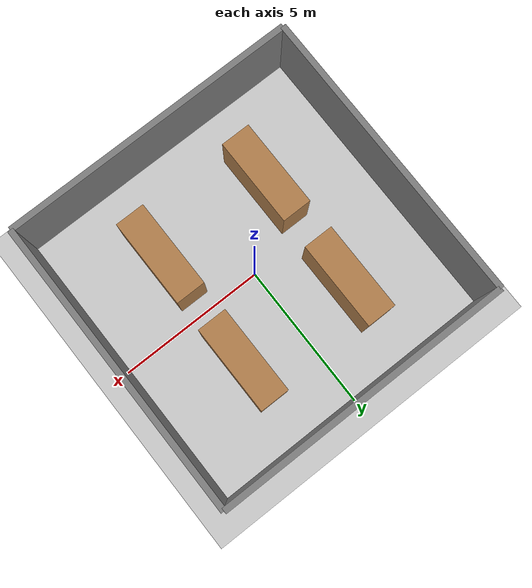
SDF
<?xml version="1.0" ?>
<sdf version="1.4">
  <world name="warehouse">
    <include>
      <uri>model://ground_plane</uri>
    </include>

    <include>
      <uri>model://sun</uri>
    </include>

    <!-- Warehouse walls -->
    <model name="warehouse_walls">
      <static>true</static>
      <link name="wall_1">
        <pose>0 5 1.5 0 0 0</pose>
        <collision name="collision">
          <geometry>
            <box>
              <size>10 0.2 3</size>
            </box>
          </geometry>
        </collision>
        <visual name="visual">
          <geometry>
            <box>
              <size>10 0.2 3</size>
            </box>
          </geometry>
          <material>
            <ambient>0.5 0.5 0.5 1</ambient>
            <diffuse>0.5 0.5 0.5 1</diffuse>
          </material>
        </visual>
      </link>

      <link name="wall_2">
        <pose>0 -5 1.5 0 0 0</pose>
        <collision name="collision">
          <geometry>
            <box>
              <size>10 0.2 3</size>
            </box>
          </geometry>
        </collision>
        <visual name="visual">
          <geometry>
            <box>
              <size>10 0.2 3</size>
            </box>
          </geometry>
          <material>
            <ambient>0.5 0.5 0.5 1</ambient>
            <diffuse>0.5 0.5 0.5 1</diffuse>
          </material>
        </visual>
      </link>

      <link name="wall_3">
        <pose>5 0 1.5 0 0 1.5708</pose>
        <collision name="collision">
          <geometry>
            <box>
              <size>10 0.2 3</size>
            </box>
          </geometry>
        </collision>
        <visual name="visual">
          <geometry>
            <box>
              <size>10 0.2 3</size>
            </box>
          </geometry>
          <material>
            <ambient>0.5 0.5 0.5 1</ambient>
            <diffuse>0.5 0.5 0.5 1</diffuse>
          </material>
        </visual>
      </link>

      <link name="wall_4">
        <pose>-5 0 1.5 0 0 1.5708</pose>
        <collision name="collision">
          <geometry>
            <box>
              <size>10 0.2 3</size>
            </box>
          </geometry>
        </collision>
        <visual name="visual">
          <geometry>
            <box>
              <size>10 0.2 3</size>
            </box>
          </geometry>
          <material>
            <ambient>0.5 0.5 0.5 1</ambient>
            <diffuse>0.5 0.5 0.5 1</diffuse>
          </material>
        </visual>
      </link>
    </model>

    <!-- Storage racks -->
    <model name="storage_racks">
      <static>true</static>
      <link name="rack_1">
        <pose>2 2 1 0 0 0</pose>
        <collision name="collision">
          <geometry>
            <box>
              <size>1 3 2</size>
            </box>
          </geometry>
        </collision>
        <visual name="visual">
          <geometry>
            <box>
              <size>1 3 2</size>
            </box>
          </geometry>
          <material>
            <ambient>0.7 0.5 0.3 1</ambient>
            <diffuse>0.7 0.5 0.3 1</diffuse>
          </material>
        </visual>
      </link>

      <link name="rack_2">
        <pose>-2 2 1 0 0 0</pose>
        <collision name="collision">
          <geometry>
            <box>
              <size>1 3 2</size>
            </box>
          </geometry>
        </collision>
        <visual name="visual">
          <geometry>
            <box>
              <size>1 3 2</size>
            </box>
          </geometry>
          <material>
            <ambient>0.7 0.5 0.3 1</ambient>
            <diffuse>0.7 0.5 0.3 1</diffuse>
          </material>
        </visual>
      </link>

      <link name="rack_3">
        <pose>2 -2 1 0 0 0</pose>
        <collision name="collision">
          <geometry>
            <box>
              <size>1 3 2</size>
            </box>
          </geometry>
        </collision>
        <visual name="visual">
          <geometry>
            <box>
              <size>1 3 2</size>
            </box>
          </geometry>
          <material>
            <ambient>0.7 0.5 0.3 1</ambient>
            <diffuse>0.7 0.5 0.3 1</diffuse>
          </material>
        </visual>
      </link>

      <link name="rack_4">
        <pose>-2 -2 1 0 0 0</pose>
        <collision name="collision">
          <geometry>
            <box>
              <size>1 3 2</size>
            </box>
          </geometry>
        </collision>
        <visual name="visual">
          <geometry>
            <box>
              <size>1 3 2</size>
            </box>
          </geometry>
          <material>
            <ambient>0.7 0.5 0.3 1</ambient>
            <diffuse>0.7 0.5 0.3 1</diffuse>
          </material>
        </visual>
      </link>
    </model>
  </world>
</sdf>
